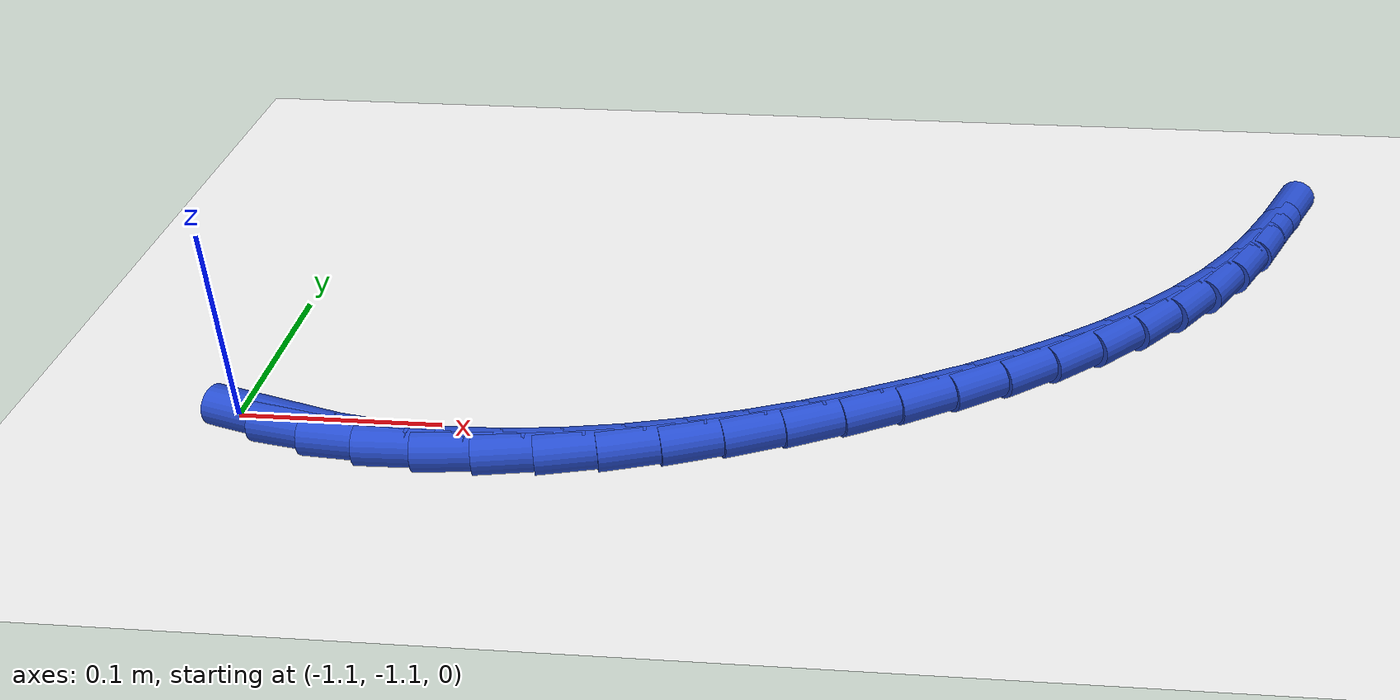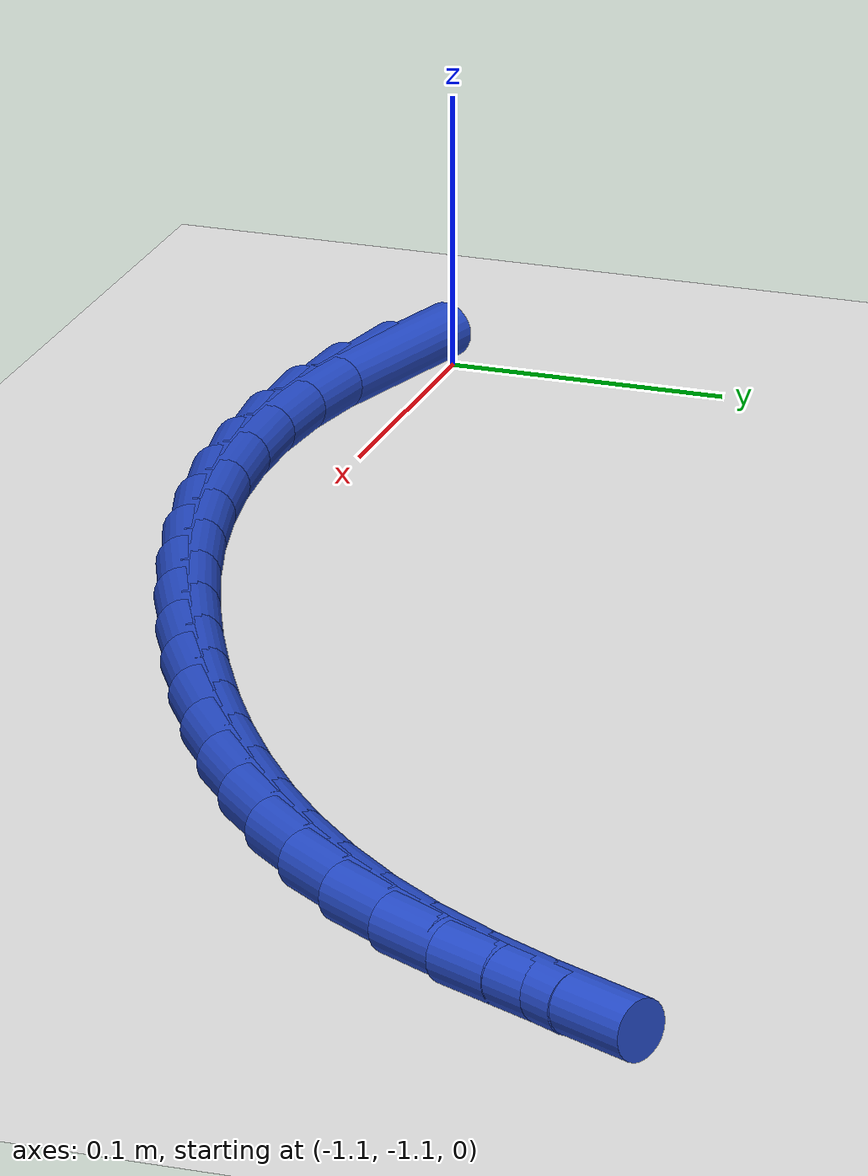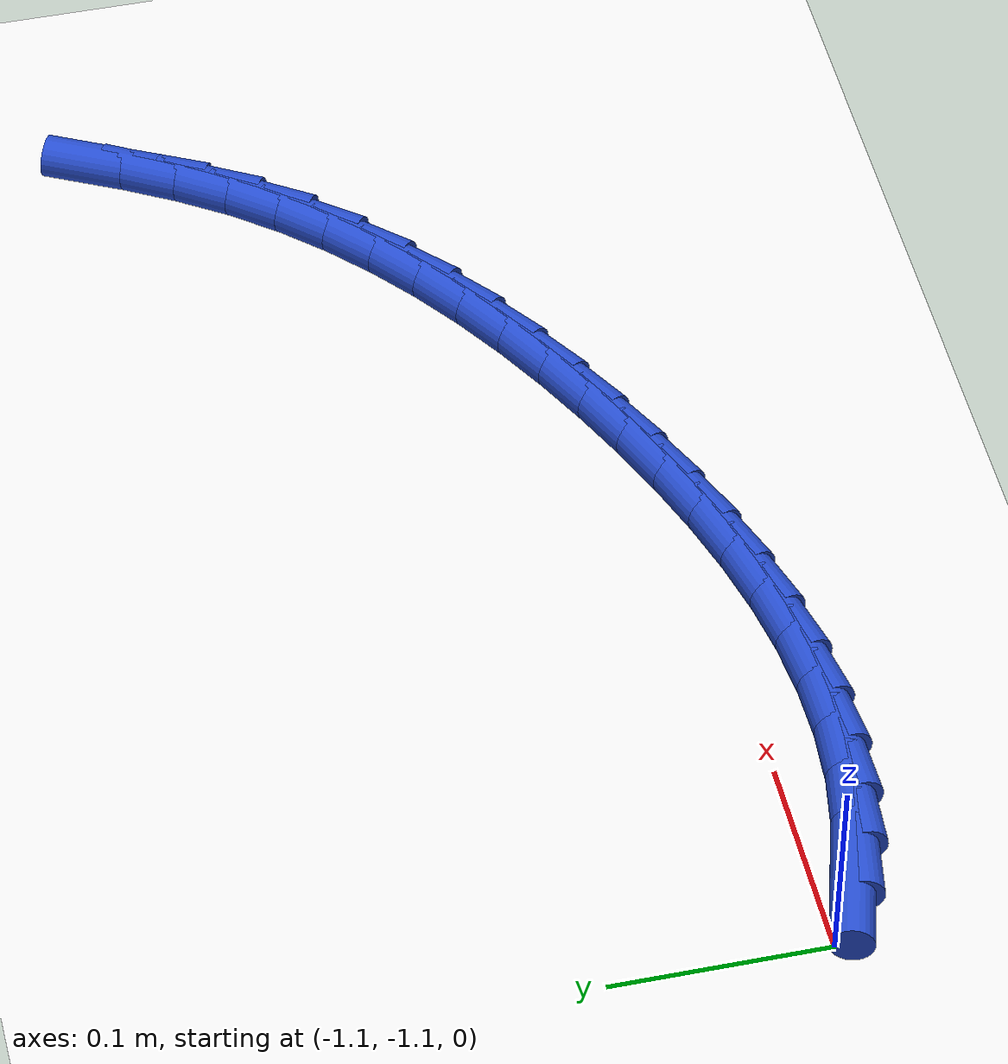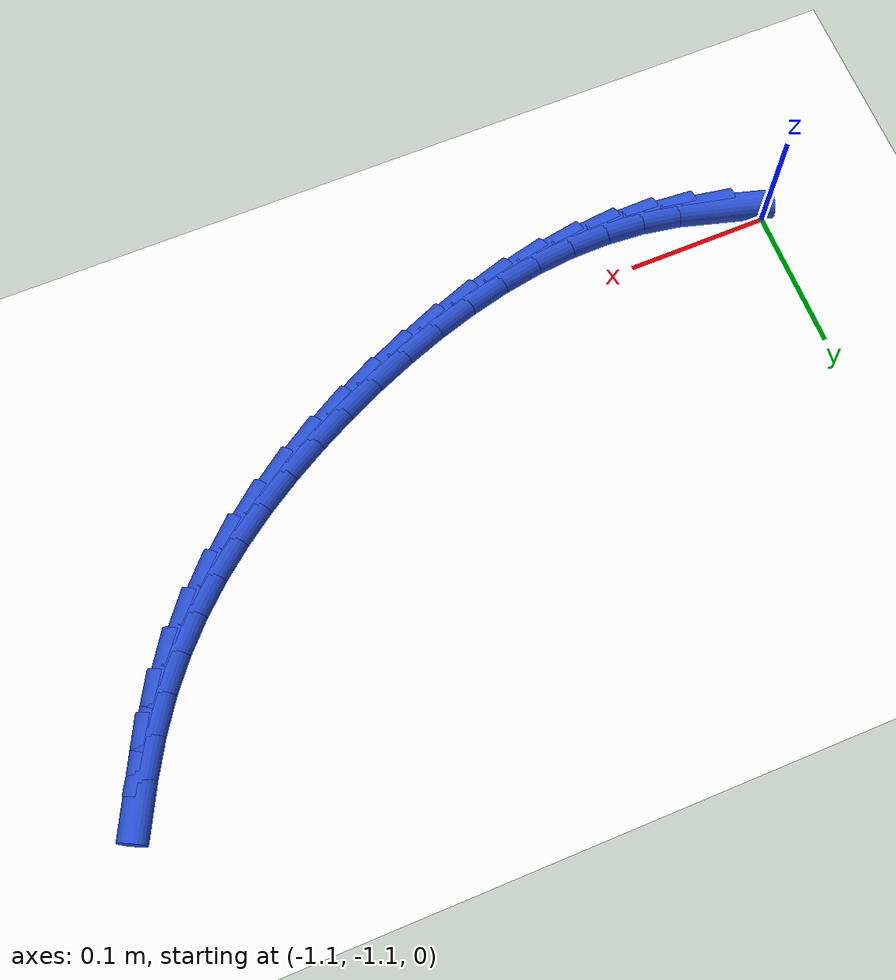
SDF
<sdf version="1.6">
 <world name="default">
  <model name="ground_plane">
   <static>1</static>
   <link name="link">
    <collision name="collision">
     <geometry><plane><normal>0 0 1</normal><size>100 100</size></plane></geometry>
     <surface><friction><ode><mu>100</mu><mu2>50</mu2></ode></friction></surface>
    </collision>
    <visual name="visual">
     <cast_shadows>0</cast_shadows>
     <geometry><plane><normal>0 0 1</normal><size>100 100</size></plane></geometry>
     <material>
      <script><uri>file://media/materials/scripts/gazebo.material</uri><name>Gazebo/WhiteGlow</name></script>
     </material>
    </visual>
   </link>
  </model>
  <model name="line">
   <link name="link_198">
    <pose>-1.069796553733495 -1.1157465961064967 0.01 0 1.57 -0.2767400957949608</pose>
    <collision name="collision">
     <geometry><cylinder><radius>0.01</radius><length>0.08</length></cylinder></geometry>
    </collision>
    <visual name="visual">
     <material>
      <script><name>Gazebo/Blue</name><uri>file://media/materials/scripts/gazebo.material</uri></script>
     </material>
     <geometry><cylinder><radius>0.01</radius><length>0.08</length></cylinder></geometry>
    </visual>
   </link>
   <link name="link_199">
    <pose>-1.0438702646126317 -1.1231103923315617 0.01 0 1.57 -0.17326044836304608</pose>
    <collision name="collision">
     <geometry><cylinder><radius>0.01</radius><length>0.08</length></cylinder></geometry>
    </collision>
    <visual name="visual">
     <material>
      <script><name>Gazebo/Blue</name><uri>file://media/materials/scripts/gazebo.material</uri></script>
     </material>
     <geometry><cylinder><radius>0.01</radius><length>0.08</length></cylinder></geometry>
    </visual>
   </link>
   <link name="link_200">
    <pose>-1.0174044006660385 -1.1277423217202867 0.01 0 1.57 -0.07267790238978507</pose>
    <collision name="collision">
     <geometry><cylinder><radius>0.01</radius><length>0.08</length></cylinder></geometry>
    </collision>
    <visual name="visual">
     <material>
      <script><name>Gazebo/Blue</name><uri>file://media/materials/scripts/gazebo.material</uri></script>
     </material>
     <geometry><cylinder><radius>0.01</radius><length>0.08</length></cylinder></geometry>
    </visual>
   </link>
   <link name="link_201">
    <pose>-0.9904796137674915 -1.129702611437772 0.01 0 1.57 0.018701869821491125</pose>
    <collision name="collision">
     <geometry><cylinder><radius>0.01</radius><length>0.08</length></cylinder></geometry>
    </collision>
    <visual name="visual">
     <material>
      <script><name>Gazebo/Blue</name><uri>file://media/materials/scripts/gazebo.material</uri></script>
     </material>
     <geometry><cylinder><radius>0.01</radius><length>0.08</length></cylinder></geometry>
    </visual>
   </link>
   <link name="link_202">
    <pose>-0.9632220782577642 -1.129192785116688 0.01 0 1.57 0.10082146311036182</pose>
    <collision name="collision">
     <geometry><cylinder><radius>0.01</radius><length>0.08</length></cylinder></geometry>
    </collision>
    <visual name="visual">
     <material>
      <script><name>Gazebo/Blue</name><uri>file://media/materials/scripts/gazebo.material</uri></script>
     </material>
     <geometry><cylinder><radius>0.01</radius><length>0.08</length></cylinder></geometry>
    </visual>
   </link>
   <link name="link_203">
    <pose>-0.9357579773100879 -1.126414393804633 0.01 0 1.57 0.17413043353546126</pose>
    <collision name="collision">
     <geometry><cylinder><radius>0.01</radius><length>0.08</length></cylinder></geometry>
    </collision>
    <visual name="visual">
     <material>
      <script><name>Gazebo/Blue</name><uri>file://media/materials/scripts/gazebo.material</uri></script>
     </material>
     <geometry><cylinder><radius>0.01</radius><length>0.08</length></cylinder></geometry>
    </visual>
   </link>
   <link name="link_204">
    <pose>-0.9082134940976934 -1.1215689885492037 0.01 0 1.57 0.23936451239165146</pose>
    <collision name="collision">
     <geometry><cylinder><radius>0.01</radius><length>0.08</length></cylinder></geometry>
    </collision>
    <visual name="visual">
     <material>
      <script><name>Gazebo/Blue</name><uri>file://media/materials/scripts/gazebo.material</uri></script>
     </material>
     <geometry><cylinder><radius>0.01</radius><length>0.08</length></cylinder></geometry>
    </visual>
   </link>
   <link name="link_205">
    <pose>-0.8807148117938142 -1.1148581203979984 0.01 0 1.57 0.29738084292346284</pose>
    <collision name="collision">
     <geometry><cylinder><radius>0.01</radius><length>0.08</length></cylinder></geometry>
    </collision>
    <visual name="visual">
     <material>
      <script><name>Gazebo/Blue</name><uri>file://media/materials/scripts/gazebo.material</uri></script>
     </material>
     <geometry><cylinder><radius>0.01</radius><length>0.08</length></cylinder></geometry>
    </visual>
   </link>
   <link name="link_206">
    <pose>-0.8533881135716801 -1.1064833403986136 0.01 0 1.57 0.3490514772199413</pose>
    <collision name="collision">
     <geometry><cylinder><radius>0.01</radius><length>0.08</length></cylinder></geometry>
    </collision>
    <visual name="visual">
     <material>
      <script><name>Gazebo/Blue</name><uri>file://media/materials/scripts/gazebo.material</uri></script>
     </material>
     <geometry><cylinder><radius>0.01</radius><length>0.08</length></cylinder></geometry>
    </visual>
   </link>
   <link name="link_207">
    <pose>-0.8263595826045234 -1.0966461995986478 0.01 0 1.57 0.3952034161324935</pose>
    <collision name="collision">
     <geometry><cylinder><radius>0.01</radius><length>0.08</length></cylinder></geometry>
    </collision>
    <visual name="visual">
     <material>
      <script><name>Gazebo/Blue</name><uri>file://media/materials/scripts/gazebo.material</uri></script>
     </material>
     <geometry><cylinder><radius>0.01</radius><length>0.08</length></cylinder></geometry>
    </visual>
   </link>
   <link name="link_208">
    <pose>-0.799755402065575 -1.085548249045698 0.01 0 1.57 0.43660482194504857</pose>
    <collision name="collision">
     <geometry><cylinder><radius>0.01</radius><length>0.08</length></cylinder></geometry>
    </collision>
    <visual name="visual">
     <material>
      <script><name>Gazebo/Blue</name><uri>file://media/materials/scripts/gazebo.material</uri></script>
     </material>
     <geometry><cylinder><radius>0.01</radius><length>0.08</length></cylinder></geometry>
    </visual>
   </link>
   <link name="link_209">
    <pose>-0.773701775016113 -1.0733905984739105 0.01 0 1.57 0.47646570971820085</pose>
    <collision name="collision">
     <geometry><cylinder><radius>0.01</radius><length>0.08</length></cylinder></geometry>
    </collision>
    <visual name="visual">
     <material>
      <script><name>Gazebo/Blue</name><uri>file://media/materials/scripts/gazebo.material</uri></script>
     </material>
     <geometry><cylinder><radius>0.01</radius><length>0.08</length></cylinder></geometry>
    </visual>
   </link>
   <link name="link_210">
    <pose>-0.7483284914005058 -1.0602947650947656 0.01 0 1.57 0.5207407308835277</pose>
    <collision name="collision">
     <geometry><cylinder><radius>0.01</radius><length>0.08</length></cylinder></geometry>
    </collision>
    <visual name="visual">
     <material>
      <script><name>Gazebo/Blue</name><uri>file://media/materials/scripts/gazebo.material</uri></script>
     </material>
     <geometry><cylinder><radius>0.01</radius><length>0.08</length></cylinder></geometry>
    </visual>
   </link>
   <link name="link_211">
    <pose>-0.7237730549797748 -1.0462110974166705 0.01 0 1.57 0.5705128276265536</pose>
    <collision name="collision">
     <geometry><cylinder><radius>0.01</radius><length>0.08</length></cylinder></geometry>
    </collision>
    <visual name="visual">
     <material>
      <script><name>Gazebo/Blue</name><uri>file://media/materials/scripts/gazebo.material</uri></script>
     </material>
     <geometry><cylinder><radius>0.01</radius><length>0.08</length></cylinder></geometry>
    </visual>
   </link>
   <link name="link_212">
    <pose>-0.7001739698766963 -1.0310677460359128 0.01 0 1.57 0.6261222498964213</pose>
    <collision name="collision">
     <geometry><cylinder><radius>0.01</radius><length>0.08</length></cylinder></geometry>
    </collision>
    <visual name="visual">
     <material>
      <script><name>Gazebo/Blue</name><uri>file://media/materials/scripts/gazebo.material</uri></script>
     </material>
     <geometry><cylinder><radius>0.01</radius><length>0.08</length></cylinder></geometry>
    </visual>
   </link>
   <link name="link_213">
    <pose>-0.6776697402140459 -1.0147928615487785 0.01 0 1.57 0.6878331106315138</pose>
    <collision name="collision">
     <geometry><cylinder><radius>0.01</radius><length>0.08</length></cylinder></geometry>
    </collision>
    <visual name="visual">
     <material>
      <script><name>Gazebo/Blue</name><uri>file://media/materials/scripts/gazebo.material</uri></script>
     </material>
     <geometry><cylinder><radius>0.01</radius><length>0.08</length></cylinder></geometry>
    </visual>
   </link>
   <link name="link_214">
    <pose>-0.6563988701146012 -0.997314594551555 0.01 0 1.57 0.7557707872465658</pose>
    <collision name="collision">
     <geometry><cylinder><radius>0.01</radius><length>0.08</length></cylinder></geometry>
    </collision>
    <visual name="visual">
     <material>
      <script><name>Gazebo/Blue</name><uri>file://media/materials/scripts/gazebo.material</uri></script>
     </material>
     <geometry><cylinder><radius>0.01</radius><length>0.08</length></cylinder></geometry>
    </visual>
   </link>
   <link name="link_215">
    <pose>-0.6364998637011378 -0.9785610956405293 0.01 0 1.57 0.8298473385906429</pose>
    <collision name="collision">
     <geometry><cylinder><radius>0.01</radius><length>0.08</length></cylinder></geometry>
    </collision>
    <visual name="visual">
     <material>
      <script><name>Gazebo/Blue</name><uri>file://media/materials/scripts/gazebo.material</uri></script>
     </material>
     <geometry><cylinder><radius>0.01</radius><length>0.08</length></cylinder></geometry>
    </visual>
   </link>
   <link name="link_216">
    <pose>-0.6181112250964319 -0.9584605154119881 0.01 0 1.57 0.9096845617141173</pose>
    <collision name="collision">
     <geometry><cylinder><radius>0.01</radius><length>0.08</length></cylinder></geometry>
    </collision>
    <visual name="visual">
     <material>
      <script><name>Gazebo/Blue</name><uri>file://media/materials/scripts/gazebo.material</uri></script>
     </material>
     <geometry><cylinder><radius>0.01</radius><length>0.08</length></cylinder></geometry>
    </visual>
   </link>
   <link name="link_217">
    <pose>-0.6013714584232599 -0.9369410044622183 0.01 0 1.57 0.9910540972214212</pose>
    <collision name="collision">
     <geometry><cylinder><radius>0.01</radius><length>0.08</length></cylinder></geometry>
    </collision>
    <visual name="visual">
     <material>
      <script><name>Gazebo/Blue</name><uri>file://media/materials/scripts/gazebo.material</uri></script>
     </material>
     <geometry><cylinder><radius>0.01</radius><length>0.08</length></cylinder></geometry>
    </visual>
   </link>
   <link name="link_218">
    <pose>-0.5863431359061241 -0.9139899959605899 0.01 0 1.57 1.0576214861572333</pose>
    <collision name="collision">
     <geometry><cylinder><radius>0.01</radius><length>0.08</length></cylinder></geometry>
    </collision>
    <visual name="visual">
     <material>
      <script><name>Gazebo/Blue</name><uri>file://media/materials/scripts/gazebo.material</uri></script>
     </material>
     <geometry><cylinder><radius>0.01</radius><length>0.08</length></cylinder></geometry>
    </visual>
   </link>
   <link name="link_219">
    <pose>-0.5727463538543709 -0.8898623054800616 0.01 0 1.57 1.1054027681109135</pose>
    <collision name="collision">
     <geometry><cylinder><radius>0.01</radius><length>0.08</length></cylinder></geometry>
    </collision>
    <visual name="visual">
     <material>
      <script><name>Gazebo/Blue</name><uri>file://media/materials/scripts/gazebo.material</uri></script>
     </material>
     <geometry><cylinder><radius>0.01</radius><length>0.08</length></cylinder></geometry>
    </visual>
   </link>
  </model>
 </world>
</sdf>
